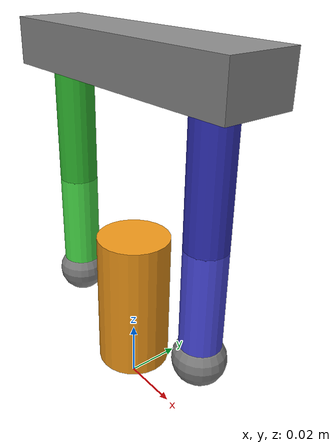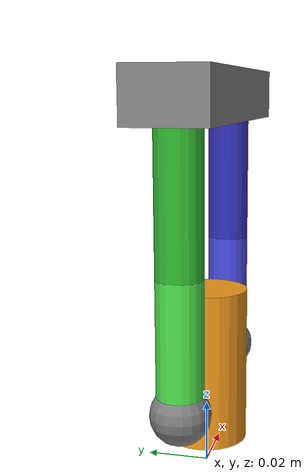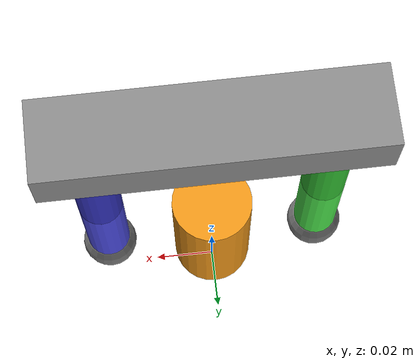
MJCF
<mujoco model="two_finger_gripper">

  <option timestep="0.002" gravity="0 0 0" integrator="Euler"/>
  <compiler angle="radian"/>

  <worldbody>

    <!-- 팜 (고정) -->
    <body name="palm" pos="0 0 0.12">
      <geom name="palm_geom" type="box" size="0.05 0.012 0.008"
            rgba="0.55 0.55 0.55 1" contype="0" conaffinity="0"/>

      <!-- 손가락 0: 왼쪽 x=-0.035, -Y축 회전 → 양각도 = 닫힘(팁 +x, 중심 방향) -->
      <body name="f0_prox_body" pos="-0.035 0 0">
        <joint name="j0_prox" type="hinge" axis="0 -1 0"
               range="-0.05 1.57" damping="0.05"/>
        <geom name="f0_prox_geom" type="capsule" size="0.007"
              fromto="0 0 0  0 0 -0.05" rgba="0.2 0.75 0.2 1"
              condim="3" friction="1.0 0.005 0.0001"/>

        <body name="f0_dist_body" pos="0 0 -0.05">
          <joint name="j0_dist" type="hinge" axis="0 -1 0"
                 range="-0.05 1.57" damping="0.05"/>
          <geom name="f0_dist_geom" type="capsule" size="0.007"
                fromto="0 0 0  0 0 -0.04" rgba="0.3 0.9 0.3 1"
                condim="3" friction="1.0 0.005 0.0001"/>
          <site name="tip0" pos="0 0 -0.04" size="0.009"/>
        </body>
      </body>

      <!-- 손가락 1: 오른쪽 x=+0.035, +Y축 회전 → 양각도 = 닫힘(팁 -x, 중심 방향) -->
      <body name="f1_prox_body" pos="0.035 0 0">
        <joint name="j1_prox" type="hinge" axis="0 1 0"
               range="-0.05 1.57" damping="0.05"/>
        <geom name="f1_prox_geom" type="capsule" size="0.007"
              fromto="0 0 0  0 0 -0.05" rgba="0.2 0.2 0.75 1"
              condim="3" friction="1.0 0.005 0.0001"/>

        <body name="f1_dist_body" pos="0 0 -0.05">
          <joint name="j1_dist" type="hinge" axis="0 1 0"
                 range="-0.05 1.57" damping="0.05"/>
          <geom name="f1_dist_geom" type="capsule" size="0.007"
                fromto="0 0 0  0 0 -0.04" rgba="0.3 0.3 0.9 1"
                condim="3" friction="1.0 0.005 0.0001"/>
          <site name="tip1" pos="0 0 -0.04" size="0.009"/>
        </body>
      </body>
    </body>

    <!-- 파지 물체: 고정(freejoint 없음), 손가락이 닫혀 닿는 표적 -->
    <body name="object" pos="0 0 0.034">
      <geom name="object_geom" type="cylinder" size="0.013 0.025"
            rgba="0.95 0.6 0.1 1" mass="0.1"
            condim="3" friction="1.0 0.005 0.0001"/>
    </body>

  </worldbody>

  <!-- 독립 위치 액추에이터 (손가락 0: idx 0-1, 손가락 1: idx 2-3) -->
  <actuator>
    <position name="act_j0_prox" joint="j0_prox" kp="30"
              forcelimited="true" forcerange="-8 8"/>
    <position name="act_j0_dist" joint="j0_dist" kp="30"
              forcelimited="true" forcerange="-8 8"/>
    <position name="act_j1_prox" joint="j1_prox" kp="30"
              forcelimited="true" forcerange="-8 8"/>
    <position name="act_j1_dist" joint="j1_dist" kp="30"
              forcelimited="true" forcerange="-8 8"/>
  </actuator>

  <!-- 팁 접촉력 센서 (touch = 법선력 스칼라 합) -->
  <sensor>
    <touch name="touch0" site="tip0"/>
    <touch name="touch1" site="tip1"/>
  </sensor>

</mujoco>
